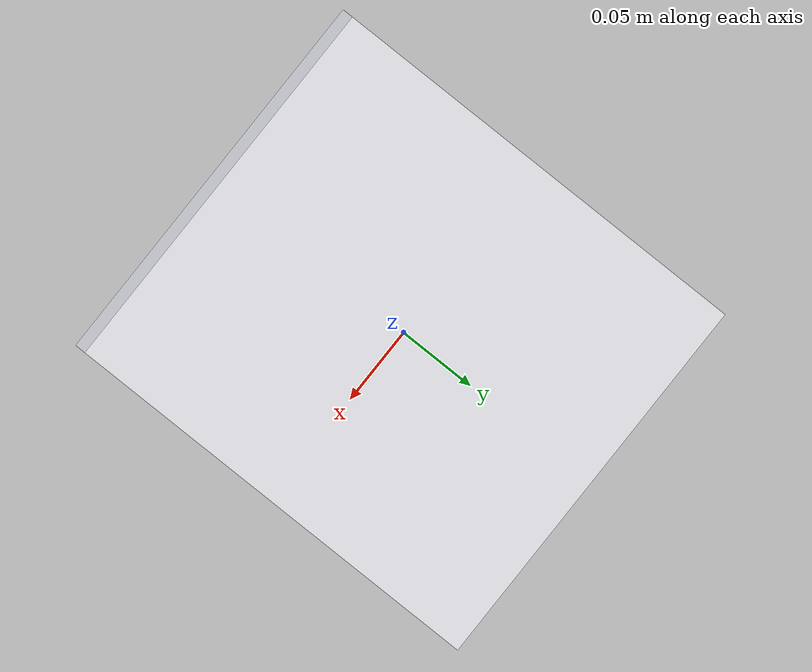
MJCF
<?xml version="1.0" encoding="utf-8"?>
<mujoco model="hplc_system">
  <compiler angle="radian" autolimits="true"/>
  <default>
    <default class="body"><geom contype="1" conaffinity="1"/></default>
  </default>
  <worldbody>
    <body name="base">
      <geom type="box" size="0.09 0.1 0.1" pos="0 0 0.1" rgba="0.9 0.9 0.92 1" class="body"/>
      <geom type="box" size="0.027 0.005000000000000001 0.025" pos="-0.045 -0.09000000000000001 0.15000000000000002" rgba="0.6 0.9 0.9 0.7" class="body"/>
      <geom type="box" size="0.09 0.1 0.06" pos="0 0 0.06" rgba="0.9 0.9 0.92 1" class="body"/>
      <body name="access_door" pos="-0.09 -0.10 0.10">
        <joint name="access_door_joint" type="hinge" axis="0 0 1" range="0 1.8" damping="0.6" frictionloss="0.5"/>
  <geom type="box" size="0.09 0.005 0.10" pos="0.09 0 0" rgba="0.85 0.85 0.9 0.6" class="body"/>
      </body>
    </body>
  </worldbody>
</mujoco>
